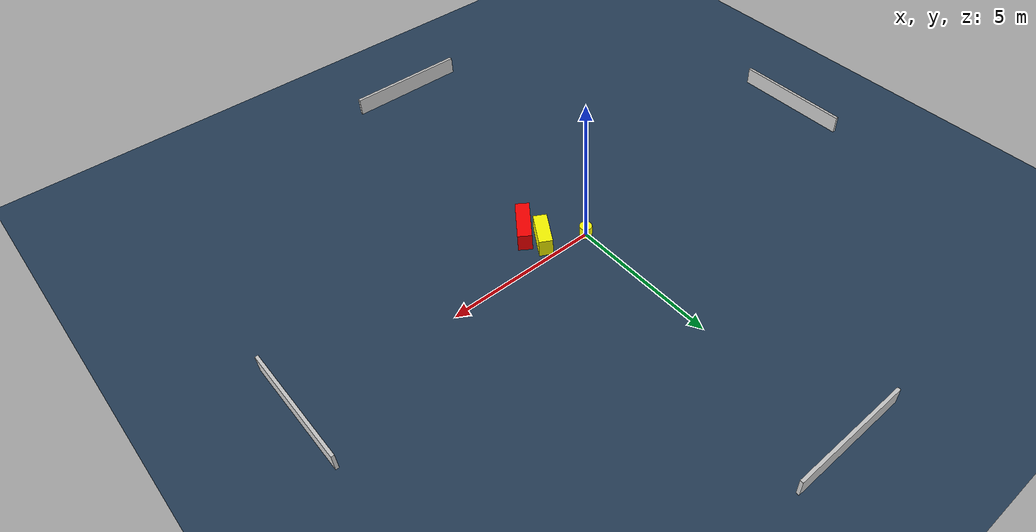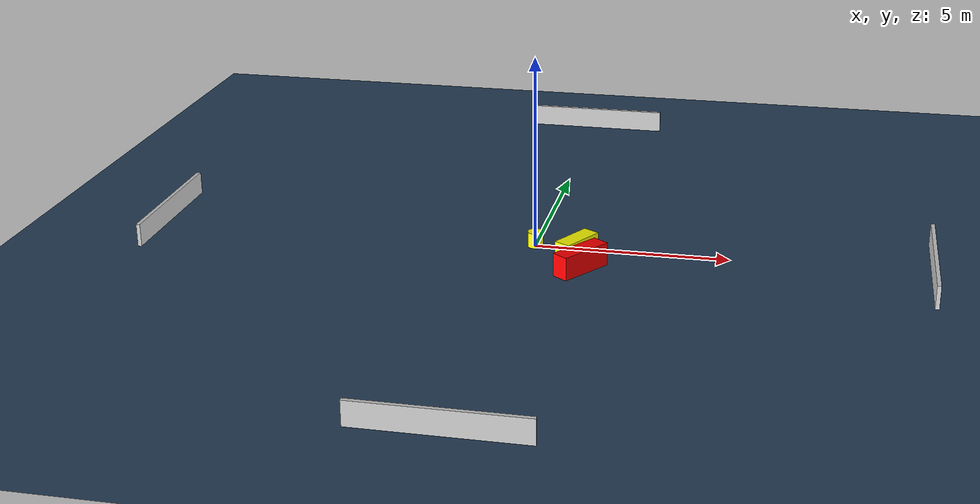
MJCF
<?xml version="1.0" ?>
<mujoco model="generated_environment">
  <option timestep="0.01" integrator="RK4" cone="elliptic"/>
  <default>
    <geom density="1"/>
  </default>
  <asset>
    <texture builtin="gradient" height="3072" name="skybox" rgb1="0.3 0.5 0.7" rgb2="0 0 0" type="skybox" width="512"/>
    <texture builtin="checker" height="300" name="groundplane" rgb1="0.2 0.3 0.4" rgb2="0.1 0.2 0.3" type="2d" width="300"/>
    <material name="groundplane" reflectance="0.2" texrepeat="5 5" texture="groundplane"/>
  </asset>
  <worldbody>
    <light dir="0 0 -1" directional="true" pos="0 0 1.5"/>
    <geom condim="3" friction="0.5 0.005 0.001" material="groundplane" name="floor" pos="0 0 0" size="0 0 0.05" type="plane"/>
    <body name="walls">
      <geom name="wall_1" condim="4" pos="-10.0 0.0 0.3" rgba="0.800000011920929 0.800000011920929 0.800000011920929 1.0" size="0.05 2.0 0.3" type="box"/>
      <geom name="wall_2" condim="4" pos="10.0 0.0 0.3" rgba="0.800000011920929 0.800000011920929 0.800000011920929 1.0" size="0.05 2.0 0.3" type="box"/>
      <geom name="wall_3" condim="4" pos="0.0 -10.0 0.3" rgba="0.800000011920929 0.800000011920929 0.800000011920929 1.0" size="2.0 0.05 0.3" type="box"/>
      <geom name="wall_4" condim="4" pos="0.0 10.0 0.3" rgba="0.800000011920929 0.800000011920929 0.800000011920929 1.0" size="2.0 0.05 0.3" type="box"/>
    </body>
    <body name="robot">
      <joint name="joint_x" type="slide" pos="0 0 0" axis="1 0 0"/>
      <joint name="joint_y" type="slide" pos="0 0 0" axis="0 1 0"/>
      <geom name="robot" type="cylinder" pos="0.0 0.0 0.2" size="0.2 0.2 0.0" mass="5.0" friction="1.0 0.005 0.0001" condim="4" rgba="1.0 1.0 0.0 1.0"/>
    </body>
    <body name="obstacle_1_movable">
      <geom name="obstacle_1_movable" condim="4" pos="1.1875717684784535 -0.6505419582256287 0.3" euler="0 0 149.8996729879114" friction="0.0 0.005 0.001" rgba="1.0 1.0 0.0 1.0" size="0.2187671231415903 0.581020270382918 0.3" type="box" mass="0.1"/>
      <joint type="free"/>
    </body>
    <body name="obstacle_2_static">
      <geom name="obstacle_2_static" condim="4" pos="1.3971269451843988 -1.3386647401427405 0.3" euler="0 0 54.69111413068348" friction="0.0 0.005 0.001" rgba="1.0 0.0 0.0 1.0" size="0.7250152074699552 0.2264380494947627 0.3" type="box"/>
    </body>
  </worldbody>
  <actuator>
    <motor name="actuator_x" joint="joint_x" gear="1" ctrlrange="-1 1"/>
    <motor name="actuator_y" joint="joint_y" gear="1" ctrlrange="-1 1"/>
  </actuator>
</mujoco>
